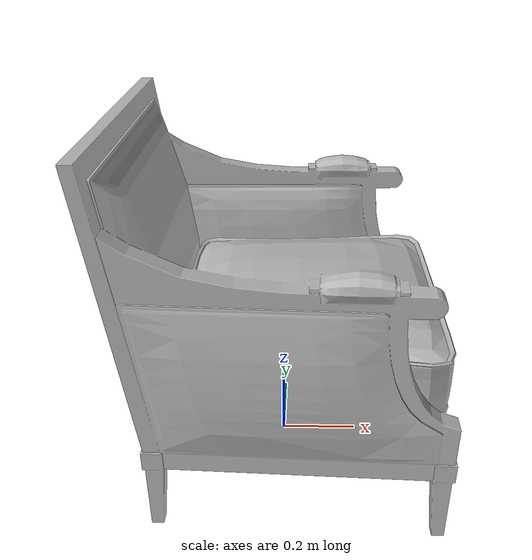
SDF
<?xml version='1.0'?>
<sdf version='1.4'>
  <model name='491'>
    <pose>0 0 0 0 0 0</pose>
    <static>true</static>
    <link name='link'>
      <collision name='collision'>
        <pose>0 0 0 0 0 0</pose>
        <geometry>
          <box>
            <size>0.789873 0.79 2</size>
          </box>
        </geometry>
      </collision>
      <visual name='visual'>
        <pose>0 0 0 0 0 0</pose>
        <geometry>
          <mesh><uri>model://491/491.dae</uri></mesh>
        </geometry>
      </visual>
    </link>
  </model>
</sdf>
